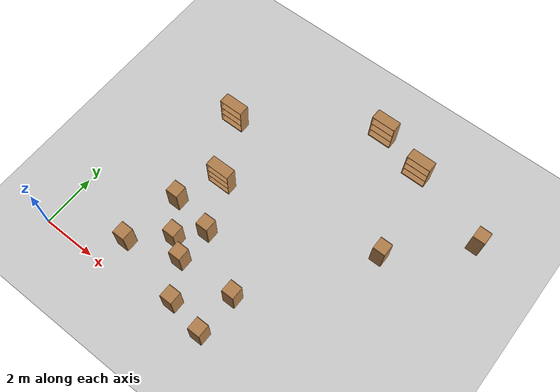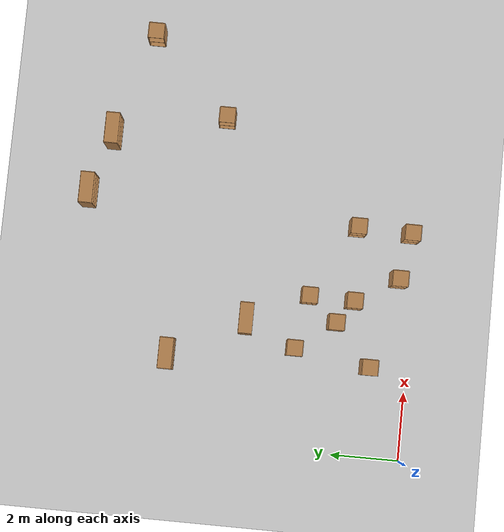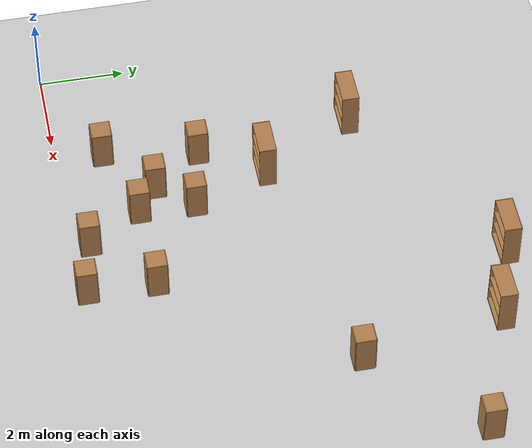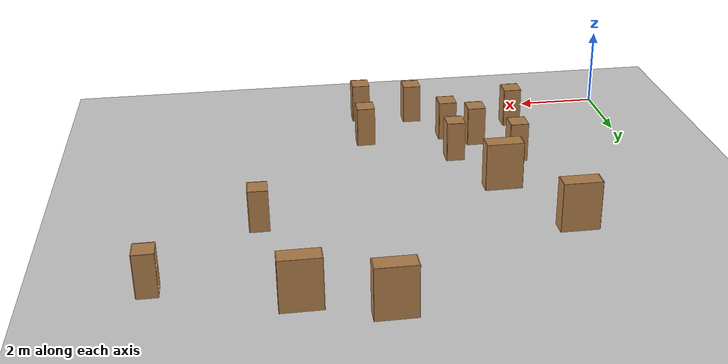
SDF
<sdf version="1.6">
 <world name="default">
  <model name="ground_plane">
   <static>1</static>
   <link name="link">
    <collision name="collision">
     <geometry><plane><normal>0 0 1</normal><size>100 100</size></plane></geometry>
     <surface><friction><ode><mu>100</mu><mu2>50</mu2></ode></friction></surface>
    </collision>
    <visual name="visual">
     <cast_shadows>0</cast_shadows>
     <geometry><plane><normal>0 0 1</normal><size>100 100</size></plane></geometry>
     <material>
      <script><uri>file://media/materials/scripts/gazebo.material</uri><name>Gazebo/Grey</name></script>
     </material>
    </visual>
   </link>
  </model>
  <model name="bookshelf_6">
   <static>1</static>
   <link name="link">
    <inertial><mass>1</mass></inertial>
    <collision name="back">
     <pose>0 0.005 0.6 0 -0 0</pose>
     <geometry><box><size>0.9 0.01 1.2</size></box></geometry>
    </collision>
    <visual name="visual1">
     <pose>0 0.005 0.6 0 -0 0</pose>
     <geometry><box><size>0.9 0.01 1.2</size></box></geometry>
     <material>
      <script><uri>file://media/materials/scripts/gazebo.material</uri><name>Gazebo/Wood</name></script>
     </material>
    </visual>
    <collision name="left_side">
     <pose>0.45 -0.195 0.6 0 -0 0</pose>
     <geometry><box><size>0.02 0.4 1.2</size></box></geometry>
    </collision>
    <visual name="visual2">
     <pose>0.45 -0.195 0.6 0 -0 0</pose>
     <geometry><box><size>0.02 0.4 1.2</size></box></geometry>
     <material>
      <script><uri>file://media/materials/scripts/gazebo.material</uri><name>Gazebo/Wood</name></script>
     </material>
    </visual>
    <collision name="right_side">
     <pose>-0.45 -0.195 0.6 0 -0 0</pose>
     <geometry><box><size>0.02 0.4 1.2</size></box></geometry>
    </collision>
    <visual name="visual3">
     <pose>-0.45 -0.195 0.6 0 -0 0</pose>
     <geometry><box><size>0.02 0.4 1.2</size></box></geometry>
     <material>
      <script><uri>file://media/materials/scripts/gazebo.material</uri><name>Gazebo/Wood</name></script>
     </material>
    </visual>
    <collision name="bottom">
     <pose>0 -0.195 0.03 0 -0 0</pose>
     <geometry><box><size>0.88 0.4 0.06</size></box></geometry>
    </collision>
    <visual name="visual4">
     <pose>0 -0.195 0.03 0 -0 0</pose>
     <geometry><box><size>0.88 0.4 0.06</size></box></geometry>
     <material>
      <script><uri>file://media/materials/scripts/gazebo.material</uri><name>Gazebo/Wood</name></script>
     </material>
    </visual>
    <collision name="top">
     <pose>0 -0.195 1.19 0 -0 0</pose>
     <geometry><box><size>0.88 0.4 0.02</size></box></geometry>
    </collision>
    <visual name="visual5">
     <pose>0 -0.195 1.19 0 -0 0</pose>
     <geometry><box><size>0.88 0.4 0.02</size></box></geometry>
     <material>
      <script><uri>file://media/materials/scripts/gazebo.material</uri><name>Gazebo/Wood</name></script>
     </material>
    </visual>
    <collision name="low_shelf">
     <pose>0 -0.195 0.43 0 -0 0</pose>
     <geometry><box><size>0.88 0.4 0.02</size></box></geometry>
    </collision>
    <visual name="visual6">
     <pose>0 -0.195 0.43 0 -0 0</pose>
     <geometry><box><size>0.88 0.4 0.02</size></box></geometry>
     <material>
      <script><uri>file://media/materials/scripts/gazebo.material</uri><name>Gazebo/Wood</name></script>
     </material>
    </visual>
    <collision name="high_shelf">
     <pose>0 -0.195 0.8 0 -0 0</pose>
     <geometry><box><size>0.88 0.4 0.02</size></box></geometry>
    </collision>
    <visual name="visual7">
     <pose>0 -0.195 0.8 0 -0 0</pose>
     <geometry><box><size>0.88 0.4 0.02</size></box></geometry>
     <material>
      <script><uri>file://media/materials/scripts/gazebo.material</uri><name>Gazebo/Wood</name></script>
     </material>
    </visual>
   </link>
   <pose>2.49876 7.225 0 0 -0 0</pose>
  </model>
  <model name="bookshelf_9">
   <static>1</static>
   <link name="link">
    <inertial><mass>1</mass></inertial>
    <collision name="back">
     <pose>0 0.005 0.6 0 -0 0</pose>
     <geometry><box><size>0.9 0.01 1.2</size></box></geometry>
    </collision>
    <visual name="visual1">
     <pose>0 0.005 0.6 0 -0 0</pose>
     <geometry><box><size>0.9 0.01 1.2</size></box></geometry>
     <material>
      <script><uri>file://media/materials/scripts/gazebo.material</uri><name>Gazebo/Wood</name></script>
     </material>
    </visual>
    <collision name="left_side">
     <pose>0.45 -0.195 0.6 0 -0 0</pose>
     <geometry><box><size>0.02 0.4 1.2</size></box></geometry>
    </collision>
    <visual name="visual2">
     <pose>0.45 -0.195 0.6 0 -0 0</pose>
     <geometry><box><size>0.02 0.4 1.2</size></box></geometry>
     <material>
      <script><uri>file://media/materials/scripts/gazebo.material</uri><name>Gazebo/Wood</name></script>
     </material>
    </visual>
    <collision name="right_side">
     <pose>-0.45 -0.195 0.6 0 -0 0</pose>
     <geometry><box><size>0.02 0.4 1.2</size></box></geometry>
    </collision>
    <visual name="visual3">
     <pose>-0.45 -0.195 0.6 0 -0 0</pose>
     <geometry><box><size>0.02 0.4 1.2</size></box></geometry>
     <material>
      <script><uri>file://media/materials/scripts/gazebo.material</uri><name>Gazebo/Wood</name></script>
     </material>
    </visual>
    <collision name="bottom">
     <pose>0 -0.195 0.03 0 -0 0</pose>
     <geometry><box><size>0.88 0.4 0.06</size></box></geometry>
    </collision>
    <visual name="visual4">
     <pose>0 -0.195 0.03 0 -0 0</pose>
     <geometry><box><size>0.88 0.4 0.06</size></box></geometry>
     <material>
      <script><uri>file://media/materials/scripts/gazebo.material</uri><name>Gazebo/Wood</name></script>
     </material>
    </visual>
    <collision name="top">
     <pose>0 -0.195 1.19 0 -0 0</pose>
     <geometry><box><size>0.88 0.4 0.02</size></box></geometry>
    </collision>
    <visual name="visual5">
     <pose>0 -0.195 1.19 0 -0 0</pose>
     <geometry><box><size>0.88 0.4 0.02</size></box></geometry>
     <material>
      <script><uri>file://media/materials/scripts/gazebo.material</uri><name>Gazebo/Wood</name></script>
     </material>
    </visual>
    <collision name="low_shelf">
     <pose>0 -0.195 0.43 0 -0 0</pose>
     <geometry><box><size>0.88 0.4 0.02</size></box></geometry>
    </collision>
    <visual name="visual6">
     <pose>0 -0.195 0.43 0 -0 0</pose>
     <geometry><box><size>0.88 0.4 0.02</size></box></geometry>
     <material>
      <script><uri>file://media/materials/scripts/gazebo.material</uri><name>Gazebo/Wood</name></script>
     </material>
    </visual>
    <collision name="high_shelf">
     <pose>0 -0.195 0.8 0 -0 0</pose>
     <geometry><box><size>0.88 0.4 0.02</size></box></geometry>
    </collision>
    <visual name="visual7">
     <pose>0 -0.195 0.8 0 -0 0</pose>
     <geometry><box><size>0.88 0.4 0.02</size></box></geometry>
     <material>
      <script><uri>file://media/materials/scripts/gazebo.material</uri><name>Gazebo/Wood</name></script>
     </material>
    </visual>
   </link>
   <pose>7.05604 9.99191 0 0 -0 0</pose>
  </model>
  <model name="bookshelf_10">
   <static>1</static>
   <link name="link">
    <inertial><mass>1</mass></inertial>
    <collision name="back">
     <pose>0 0.005 0.6 0 -0 0</pose>
     <geometry><box><size>0.9 0.01 1.2</size></box></geometry>
    </collision>
    <visual name="visual1">
     <pose>0 0.005 0.6 0 -0 0</pose>
     <geometry><box><size>0.9 0.01 1.2</size></box></geometry>
     <material>
      <script><uri>file://media/materials/scripts/gazebo.material</uri><name>Gazebo/Wood</name></script>
     </material>
    </visual>
    <collision name="left_side">
     <pose>0.45 -0.195 0.6 0 -0 0</pose>
     <geometry><box><size>0.02 0.4 1.2</size></box></geometry>
    </collision>
    <visual name="visual2">
     <pose>0.45 -0.195 0.6 0 -0 0</pose>
     <geometry><box><size>0.02 0.4 1.2</size></box></geometry>
     <material>
      <script><uri>file://media/materials/scripts/gazebo.material</uri><name>Gazebo/Wood</name></script>
     </material>
    </visual>
    <collision name="right_side">
     <pose>-0.45 -0.195 0.6 0 -0 0</pose>
     <geometry><box><size>0.02 0.4 1.2</size></box></geometry>
    </collision>
    <visual name="visual3">
     <pose>-0.45 -0.195 0.6 0 -0 0</pose>
     <geometry><box><size>0.02 0.4 1.2</size></box></geometry>
     <material>
      <script><uri>file://media/materials/scripts/gazebo.material</uri><name>Gazebo/Wood</name></script>
     </material>
    </visual>
    <collision name="bottom">
     <pose>0 -0.195 0.03 0 -0 0</pose>
     <geometry><box><size>0.88 0.4 0.06</size></box></geometry>
    </collision>
    <visual name="visual4">
     <pose>0 -0.195 0.03 0 -0 0</pose>
     <geometry><box><size>0.88 0.4 0.06</size></box></geometry>
     <material>
      <script><uri>file://media/materials/scripts/gazebo.material</uri><name>Gazebo/Wood</name></script>
     </material>
    </visual>
    <collision name="top">
     <pose>0 -0.195 1.19 0 -0 0</pose>
     <geometry><box><size>0.88 0.4 0.02</size></box></geometry>
    </collision>
    <visual name="visual5">
     <pose>0 -0.195 1.19 0 -0 0</pose>
     <geometry><box><size>0.88 0.4 0.02</size></box></geometry>
     <material>
      <script><uri>file://media/materials/scripts/gazebo.material</uri><name>Gazebo/Wood</name></script>
     </material>
    </visual>
    <collision name="low_shelf">
     <pose>0 -0.195 0.43 0 -0 0</pose>
     <geometry><box><size>0.88 0.4 0.02</size></box></geometry>
    </collision>
    <visual name="visual6">
     <pose>0 -0.195 0.43 0 -0 0</pose>
     <geometry><box><size>0.88 0.4 0.02</size></box></geometry>
     <material>
      <script><uri>file://media/materials/scripts/gazebo.material</uri><name>Gazebo/Wood</name></script>
     </material>
    </visual>
    <collision name="high_shelf">
     <pose>0 -0.195 0.8 0 -0 0</pose>
     <geometry><box><size>0.88 0.4 0.02</size></box></geometry>
    </collision>
    <visual name="visual7">
     <pose>0 -0.195 0.8 0 -0 0</pose>
     <geometry><box><size>0.88 0.4 0.02</size></box></geometry>
     <material>
      <script><uri>file://media/materials/scripts/gazebo.material</uri><name>Gazebo/Wood</name></script>
     </material>
    </visual>
   </link>
   <pose>8.86557 9.4373 0 0 -0 0</pose>
  </model>
  <model name="cabinet_1">
   <static>1</static>
   <link name="cabinet_bottom_plate">
    <inertial>
     <pose>0 0 -1 0 -0 0</pose>
     <inertia><ixx>2.05</ixx><ixy>0</ixy><ixz>0</ixz><iyy>2.05</iyy><iyz>0</iyz><izz>2.05</izz></inertia>
     <mass>25</mass>
    </inertial>
    <collision name="cabinet_bottom_plate_geom">
     <pose>0 0 0.01 0 -0 0</pose>
     <geometry><box><size>0.45 0.45 0.02</size></box></geometry>
    </collision>
    <visual name="cabinet_bottom_plate_geom_visual">
     <pose>0 0 0.01 0 -0 0</pose>
     <geometry><box><size>0.45 0.45 0.02</size></box></geometry>
     <material>
      <script><uri>file://media/materials/scripts/gazebo.material</uri><name>Gazebo/Wood</name></script>
     </material>
    </visual>
    <collision name="cabinet_bottom_plate_geom_cabinet_back_plate">
     <pose>0.235 0 0.51 0 -0 0</pose>
     <geometry><box><size>0.02 0.45 1.02</size></box></geometry>
    </collision>
    <visual name="cabinet_bottom_plate_geom_cabinet_back_plate_visual">
     <pose>0.235 0 0.51 0 -0 0</pose>
     <geometry><box><size>0.02 0.45 1.02</size></box></geometry>
     <material>
      <script><uri>file://media/materials/scripts/gazebo.material</uri><name>Gazebo/Wood</name></script>
     </material>
    </visual>
    <collision name="cabinet_bottom_plate_geom_cabinet_left_plate">
     <pose>0 0.235 0.51 0 -0 0</pose>
     <geometry><box><size>0.45 0.02 1.02</size></box></geometry>
    </collision>
    <visual name="cabinet_bottom_plate_geom_cabinet_left_plate_visual">
     <pose>0 0.235 0.51 0 -0 0</pose>
     <geometry><box><size>0.45 0.02 1.02</size></box></geometry>
     <material>
      <script><uri>file://media/materials/scripts/gazebo.material</uri><name>Gazebo/Wood</name></script>
     </material>
    </visual>
    <collision name="cabinet_bottom_plate_geom_cabinet_middle_plate">
     <pose>0 0 0.51 0 -0 0</pose>
     <geometry><box><size>0.45 0.45 0.02</size></box></geometry>
    </collision>
    <visual name="cabinet_bottom_plate_geom_cabinet_middle_plate_visual">
     <pose>0 0 0.51 0 -0 0</pose>
     <geometry><box><size>0.45 0.45 0.02</size></box></geometry>
     <material>
      <script><uri>file://media/materials/scripts/gazebo.material</uri><name>Gazebo/Wood</name></script>
     </material>
    </visual>
    <collision name="cabinet_bottom_plate_geom_cabinet_right_plate">
     <pose>0 -0.235 0.51 0 -0 0</pose>
     <geometry><box><size>0.45 0.02 1.02</size></box></geometry>
    </collision>
    <visual name="cabinet_bottom_plate_geom_cabinet_right_plate_visual">
     <pose>0 -0.235 0.51 0 -0 0</pose>
     <geometry><box><size>0.45 0.02 1.02</size></box></geometry>
     <material>
      <script><uri>file://media/materials/scripts/gazebo.material</uri><name>Gazebo/Wood</name></script>
     </material>
    </visual>
    <collision name="cabinet_bottom_plate_geom_cabinet_top_plate">
     <pose>0 0 1.01 0 -0 0</pose>
     <geometry><box><size>0.45 0.45 0.02</size></box></geometry>
    </collision>
    <visual name="cabinet_bottom_plate_geom_cabinet_top_plate_visual">
     <pose>0 0 1.01 0 -0 0</pose>
     <geometry><box><size>0.45 0.45 0.02</size></box></geometry>
     <material>
      <script><uri>file://media/materials/scripts/gazebo.material</uri><name>Gazebo/Wood</name></script>
     </material>
    </visual>
   </link>
   <pose>11.9001 8.25575 0 0 -0 0</pose>
  </model>
  <model name="cabinet_2">
   <static>1</static>
   <link name="cabinet_bottom_plate">
    <inertial>
     <pose>0 0 -1 0 -0 0</pose>
     <inertia><ixx>2.05</ixx><ixy>0</ixy><ixz>0</ixz><iyy>2.05</iyy><iyz>0</iyz><izz>2.05</izz></inertia>
     <mass>25</mass>
    </inertial>
    <collision name="cabinet_bottom_plate_geom">
     <pose>0 0 0.01 0 -0 0</pose>
     <geometry><box><size>0.45 0.45 0.02</size></box></geometry>
    </collision>
    <visual name="cabinet_bottom_plate_geom_visual">
     <pose>0 0 0.01 0 -0 0</pose>
     <geometry><box><size>0.45 0.45 0.02</size></box></geometry>
     <material>
      <script><uri>file://media/materials/scripts/gazebo.material</uri><name>Gazebo/Wood</name></script>
     </material>
    </visual>
    <collision name="cabinet_bottom_plate_geom_cabinet_back_plate">
     <pose>0.235 0 0.51 0 -0 0</pose>
     <geometry><box><size>0.02 0.45 1.02</size></box></geometry>
    </collision>
    <visual name="cabinet_bottom_plate_geom_cabinet_back_plate_visual">
     <pose>0.235 0 0.51 0 -0 0</pose>
     <geometry><box><size>0.02 0.45 1.02</size></box></geometry>
     <material>
      <script><uri>file://media/materials/scripts/gazebo.material</uri><name>Gazebo/Wood</name></script>
     </material>
    </visual>
    <collision name="cabinet_bottom_plate_geom_cabinet_left_plate">
     <pose>0 0.235 0.51 0 -0 0</pose>
     <geometry><box><size>0.45 0.02 1.02</size></box></geometry>
    </collision>
    <visual name="cabinet_bottom_plate_geom_cabinet_left_plate_visual">
     <pose>0 0.235 0.51 0 -0 0</pose>
     <geometry><box><size>0.45 0.02 1.02</size></box></geometry>
     <material>
      <script><uri>file://media/materials/scripts/gazebo.material</uri><name>Gazebo/Wood</name></script>
     </material>
    </visual>
    <collision name="cabinet_bottom_plate_geom_cabinet_middle_plate">
     <pose>0 0 0.51 0 -0 0</pose>
     <geometry><box><size>0.45 0.45 0.02</size></box></geometry>
    </collision>
    <visual name="cabinet_bottom_plate_geom_cabinet_middle_plate_visual">
     <pose>0 0 0.51 0 -0 0</pose>
     <geometry><box><size>0.45 0.45 0.02</size></box></geometry>
     <material>
      <script><uri>file://media/materials/scripts/gazebo.material</uri><name>Gazebo/Wood</name></script>
     </material>
    </visual>
    <collision name="cabinet_bottom_plate_geom_cabinet_right_plate">
     <pose>0 -0.235 0.51 0 -0 0</pose>
     <geometry><box><size>0.45 0.02 1.02</size></box></geometry>
    </collision>
    <visual name="cabinet_bottom_plate_geom_cabinet_right_plate_visual">
     <pose>0 -0.235 0.51 0 -0 0</pose>
     <geometry><box><size>0.45 0.02 1.02</size></box></geometry>
     <material>
      <script><uri>file://media/materials/scripts/gazebo.material</uri><name>Gazebo/Wood</name></script>
     </material>
    </visual>
    <collision name="cabinet_bottom_plate_geom_cabinet_top_plate">
     <pose>0 0 1.01 0 -0 0</pose>
     <geometry><box><size>0.45 0.45 0.02</size></box></geometry>
    </collision>
    <visual name="cabinet_bottom_plate_geom_cabinet_top_plate_visual">
     <pose>0 0 1.01 0 -0 0</pose>
     <geometry><box><size>0.45 0.45 0.02</size></box></geometry>
     <material>
      <script><uri>file://media/materials/scripts/gazebo.material</uri><name>Gazebo/Wood</name></script>
     </material>
    </visual>
   </link>
   <pose>9.58467 5.92843 0 0 -0 0</pose>
  </model>
  <model name="cabinet_50">
   <static>1</static>
   <link name="cabinet_bottom_plate">
    <inertial>
     <pose>0 0 -1 0 -0 0</pose>
     <inertia><ixx>2.05</ixx><ixy>0</ixy><ixz>0</ixz><iyy>2.05</iyy><iyz>0</iyz><izz>2.05</izz></inertia>
     <mass>25</mass>
    </inertial>
    <collision name="cabinet_bottom_plate_geom">
     <pose>0 0 0.01 0 -0 0</pose>
     <geometry><box><size>0.45 0.45 0.02</size></box></geometry>
    </collision>
    <visual name="cabinet_bottom_plate_geom_visual">
     <pose>0 0 0.01 0 -0 0</pose>
     <geometry><box><size>0.45 0.45 0.02</size></box></geometry>
     <material>
      <script><uri>file://media/materials/scripts/gazebo.material</uri><name>Gazebo/Wood</name></script>
     </material>
    </visual>
    <collision name="cabinet_bottom_plate_geom_cabinet_back_plate">
     <pose>0.235 0 0.51 0 -0 0</pose>
     <geometry><box><size>0.02 0.45 1.02</size></box></geometry>
    </collision>
    <visual name="cabinet_bottom_plate_geom_cabinet_back_plate_visual">
     <pose>0.235 0 0.51 0 -0 0</pose>
     <geometry><box><size>0.02 0.45 1.02</size></box></geometry>
     <material>
      <script><uri>file://media/materials/scripts/gazebo.material</uri><name>Gazebo/Wood</name></script>
     </material>
    </visual>
    <collision name="cabinet_bottom_plate_geom_cabinet_left_plate">
     <pose>0 0.235 0.51 0 -0 0</pose>
     <geometry><box><size>0.45 0.02 1.02</size></box></geometry>
    </collision>
    <visual name="cabinet_bottom_plate_geom_cabinet_left_plate_visual">
     <pose>0 0.235 0.51 0 -0 0</pose>
     <geometry><box><size>0.45 0.02 1.02</size></box></geometry>
     <material>
      <script><uri>file://media/materials/scripts/gazebo.material</uri><name>Gazebo/Wood</name></script>
     </material>
    </visual>
    <collision name="cabinet_bottom_plate_geom_cabinet_middle_plate">
     <pose>0 0 0.51 0 -0 0</pose>
     <geometry><box><size>0.45 0.45 0.02</size></box></geometry>
    </collision>
    <visual name="cabinet_bottom_plate_geom_cabinet_middle_plate_visual">
     <pose>0 0 0.51 0 -0 0</pose>
     <geometry><box><size>0.45 0.45 0.02</size></box></geometry>
     <material>
      <script><uri>file://media/materials/scripts/gazebo.material</uri><name>Gazebo/Wood</name></script>
     </material>
    </visual>
    <collision name="cabinet_bottom_plate_geom_cabinet_right_plate">
     <pose>0 -0.235 0.51 0 -0 0</pose>
     <geometry><box><size>0.45 0.02 1.02</size></box></geometry>
    </collision>
    <visual name="cabinet_bottom_plate_geom_cabinet_right_plate_visual">
     <pose>0 -0.235 0.51 0 -0 0</pose>
     <geometry><box><size>0.45 0.02 1.02</size></box></geometry>
     <material>
      <script><uri>file://media/materials/scripts/gazebo.material</uri><name>Gazebo/Wood</name></script>
     </material>
    </visual>
    <collision name="cabinet_bottom_plate_geom_cabinet_top_plate">
     <pose>0 0 1.01 0 -0 0</pose>
     <geometry><box><size>0.45 0.45 0.02</size></box></geometry>
    </collision>
    <visual name="cabinet_bottom_plate_geom_cabinet_top_plate_visual">
     <pose>0 0 1.01 0 -0 0</pose>
     <geometry><box><size>0.45 0.45 0.02</size></box></geometry>
     <material>
      <script><uri>file://media/materials/scripts/gazebo.material</uri><name>Gazebo/Wood</name></script>
     </material>
    </visual>
   </link>
   <pose>2.63558 1.13269 0 0 -0 0</pose>
  </model>
  <model name="cabinet_51">
   <static>1</static>
   <link name="cabinet_bottom_plate">
    <inertial>
     <pose>0 0 -1 0 -0 0</pose>
     <inertia><ixx>2.05</ixx><ixy>0</ixy><ixz>0</ixz><iyy>2.05</iyy><iyz>0</iyz><izz>2.05</izz></inertia>
     <mass>25</mass>
    </inertial>
    <collision name="cabinet_bottom_plate_geom">
     <pose>0 0 0.01 0 -0 0</pose>
     <geometry><box><size>0.45 0.45 0.02</size></box></geometry>
    </collision>
    <visual name="cabinet_bottom_plate_geom_visual">
     <pose>0 0 0.01 0 -0 0</pose>
     <geometry><box><size>0.45 0.45 0.02</size></box></geometry>
     <material>
      <script><uri>file://media/materials/scripts/gazebo.material</uri><name>Gazebo/Wood</name></script>
     </material>
    </visual>
    <collision name="cabinet_bottom_plate_geom_cabinet_back_plate">
     <pose>0.235 0 0.51 0 -0 0</pose>
     <geometry><box><size>0.02 0.45 1.02</size></box></geometry>
    </collision>
    <visual name="cabinet_bottom_plate_geom_cabinet_back_plate_visual">
     <pose>0.235 0 0.51 0 -0 0</pose>
     <geometry><box><size>0.02 0.45 1.02</size></box></geometry>
     <material>
      <script><uri>file://media/materials/scripts/gazebo.material</uri><name>Gazebo/Wood</name></script>
     </material>
    </visual>
    <collision name="cabinet_bottom_plate_geom_cabinet_left_plate">
     <pose>0 0.235 0.51 0 -0 0</pose>
     <geometry><box><size>0.45 0.02 1.02</size></box></geometry>
    </collision>
    <visual name="cabinet_bottom_plate_geom_cabinet_left_plate_visual">
     <pose>0 0.235 0.51 0 -0 0</pose>
     <geometry><box><size>0.45 0.02 1.02</size></box></geometry>
     <material>
      <script><uri>file://media/materials/scripts/gazebo.material</uri><name>Gazebo/Wood</name></script>
     </material>
    </visual>
    <collision name="cabinet_bottom_plate_geom_cabinet_middle_plate">
     <pose>0 0 0.51 0 -0 0</pose>
     <geometry><box><size>0.45 0.45 0.02</size></box></geometry>
    </collision>
    <visual name="cabinet_bottom_plate_geom_cabinet_middle_plate_visual">
     <pose>0 0 0.51 0 -0 0</pose>
     <geometry><box><size>0.45 0.45 0.02</size></box></geometry>
     <material>
      <script><uri>file://media/materials/scripts/gazebo.material</uri><name>Gazebo/Wood</name></script>
     </material>
    </visual>
    <collision name="cabinet_bottom_plate_geom_cabinet_right_plate">
     <pose>0 -0.235 0.51 0 -0 0</pose>
     <geometry><box><size>0.45 0.02 1.02</size></box></geometry>
    </collision>
    <visual name="cabinet_bottom_plate_geom_cabinet_right_plate_visual">
     <pose>0 -0.235 0.51 0 -0 0</pose>
     <geometry><box><size>0.45 0.02 1.02</size></box></geometry>
     <material>
      <script><uri>file://media/materials/scripts/gazebo.material</uri><name>Gazebo/Wood</name></script>
     </material>
    </visual>
    <collision name="cabinet_bottom_plate_geom_cabinet_top_plate">
     <pose>0 0 1.01 0 -0 0</pose>
     <geometry><box><size>0.45 0.45 0.02</size></box></geometry>
    </collision>
    <visual name="cabinet_bottom_plate_geom_cabinet_top_plate_visual">
     <pose>0 0 1.01 0 -0 0</pose>
     <geometry><box><size>0.45 0.45 0.02</size></box></geometry>
     <material>
      <script><uri>file://media/materials/scripts/gazebo.material</uri><name>Gazebo/Wood</name></script>
     </material>
    </visual>
   </link>
   <pose>3.84955 2.19991 0 0 -0 0</pose>
  </model>
  <model name="cabinet_52">
   <static>1</static>
   <link name="cabinet_bottom_plate">
    <inertial>
     <pose>0 0 -1 0 -0 0</pose>
     <inertia><ixx>2.05</ixx><ixy>0</ixy><ixz>0</ixz><iyy>2.05</iyy><iyz>0</iyz><izz>2.05</izz></inertia>
     <mass>25</mass>
    </inertial>
    <collision name="cabinet_bottom_plate_geom">
     <pose>0 0 0.01 0 -0 0</pose>
     <geometry><box><size>0.45 0.45 0.02</size></box></geometry>
    </collision>
    <visual name="cabinet_bottom_plate_geom_visual">
     <pose>0 0 0.01 0 -0 0</pose>
     <geometry><box><size>0.45 0.45 0.02</size></box></geometry>
     <material>
      <script><uri>file://media/materials/scripts/gazebo.material</uri><name>Gazebo/Wood</name></script>
     </material>
    </visual>
    <collision name="cabinet_bottom_plate_geom_cabinet_back_plate">
     <pose>0.235 0 0.51 0 -0 0</pose>
     <geometry><box><size>0.02 0.45 1.02</size></box></geometry>
    </collision>
    <visual name="cabinet_bottom_plate_geom_cabinet_back_plate_visual">
     <pose>0.235 0 0.51 0 -0 0</pose>
     <geometry><box><size>0.02 0.45 1.02</size></box></geometry>
     <material>
      <script><uri>file://media/materials/scripts/gazebo.material</uri><name>Gazebo/Wood</name></script>
     </material>
    </visual>
    <collision name="cabinet_bottom_plate_geom_cabinet_left_plate">
     <pose>0 0.235 0.51 0 -0 0</pose>
     <geometry><box><size>0.45 0.02 1.02</size></box></geometry>
    </collision>
    <visual name="cabinet_bottom_plate_geom_cabinet_left_plate_visual">
     <pose>0 0.235 0.51 0 -0 0</pose>
     <geometry><box><size>0.45 0.02 1.02</size></box></geometry>
     <material>
      <script><uri>file://media/materials/scripts/gazebo.material</uri><name>Gazebo/Wood</name></script>
     </material>
    </visual>
    <collision name="cabinet_bottom_plate_geom_cabinet_middle_plate">
     <pose>0 0 0.51 0 -0 0</pose>
     <geometry><box><size>0.45 0.45 0.02</size></box></geometry>
    </collision>
    <visual name="cabinet_bottom_plate_geom_cabinet_middle_plate_visual">
     <pose>0 0 0.51 0 -0 0</pose>
     <geometry><box><size>0.45 0.45 0.02</size></box></geometry>
     <material>
      <script><uri>file://media/materials/scripts/gazebo.material</uri><name>Gazebo/Wood</name></script>
     </material>
    </visual>
    <collision name="cabinet_bottom_plate_geom_cabinet_right_plate">
     <pose>0 -0.235 0.51 0 -0 0</pose>
     <geometry><box><size>0.45 0.02 1.02</size></box></geometry>
    </collision>
    <visual name="cabinet_bottom_plate_geom_cabinet_right_plate_visual">
     <pose>0 -0.235 0.51 0 -0 0</pose>
     <geometry><box><size>0.45 0.02 1.02</size></box></geometry>
     <material>
      <script><uri>file://media/materials/scripts/gazebo.material</uri><name>Gazebo/Wood</name></script>
     </material>
    </visual>
    <collision name="cabinet_bottom_plate_geom_cabinet_top_plate">
     <pose>0 0 1.01 0 -0 0</pose>
     <geometry><box><size>0.45 0.45 0.02</size></box></geometry>
    </collision>
    <visual name="cabinet_bottom_plate_geom_cabinet_top_plate_visual">
     <pose>0 0 1.01 0 -0 0</pose>
     <geometry><box><size>0.45 0.45 0.02</size></box></geometry>
     <material>
      <script><uri>file://media/materials/scripts/gazebo.material</uri><name>Gazebo/Wood</name></script>
     </material>
    </visual>
   </link>
   <pose>2.9952 3.34253 0 0 -0 0</pose>
  </model>
  <model name="bookshelf_38">
   <static>1</static>
   <link name="link">
    <inertial><mass>1</mass></inertial>
    <collision name="back">
     <pose>0 0.005 0.6 0 -0 0</pose>
     <geometry><box><size>0.9 0.01 1.2</size></box></geometry>
    </collision>
    <visual name="visual1">
     <pose>0 0.005 0.6 0 -0 0</pose>
     <geometry><box><size>0.9 0.01 1.2</size></box></geometry>
     <material>
      <script><uri>file://media/materials/scripts/gazebo.material</uri><name>Gazebo/Wood</name></script>
     </material>
    </visual>
    <collision name="left_side">
     <pose>0.45 -0.195 0.6 0 -0 0</pose>
     <geometry><box><size>0.02 0.4 1.2</size></box></geometry>
    </collision>
    <visual name="visual2">
     <pose>0.45 -0.195 0.6 0 -0 0</pose>
     <geometry><box><size>0.02 0.4 1.2</size></box></geometry>
     <material>
      <script><uri>file://media/materials/scripts/gazebo.material</uri><name>Gazebo/Wood</name></script>
     </material>
    </visual>
    <collision name="right_side">
     <pose>-0.45 -0.195 0.6 0 -0 0</pose>
     <geometry><box><size>0.02 0.4 1.2</size></box></geometry>
    </collision>
    <visual name="visual3">
     <pose>-0.45 -0.195 0.6 0 -0 0</pose>
     <geometry><box><size>0.02 0.4 1.2</size></box></geometry>
     <material>
      <script><uri>file://media/materials/scripts/gazebo.material</uri><name>Gazebo/Wood</name></script>
     </material>
    </visual>
    <collision name="bottom">
     <pose>0 -0.195 0.03 0 -0 0</pose>
     <geometry><box><size>0.88 0.4 0.06</size></box></geometry>
    </collision>
    <visual name="visual4">
     <pose>0 -0.195 0.03 0 -0 0</pose>
     <geometry><box><size>0.88 0.4 0.06</size></box></geometry>
     <material>
      <script><uri>file://media/materials/scripts/gazebo.material</uri><name>Gazebo/Wood</name></script>
     </material>
    </visual>
    <collision name="top">
     <pose>0 -0.195 1.19 0 -0 0</pose>
     <geometry><box><size>0.88 0.4 0.02</size></box></geometry>
    </collision>
    <visual name="visual5">
     <pose>0 -0.195 1.19 0 -0 0</pose>
     <geometry><box><size>0.88 0.4 0.02</size></box></geometry>
     <material>
      <script><uri>file://media/materials/scripts/gazebo.material</uri><name>Gazebo/Wood</name></script>
     </material>
    </visual>
    <collision name="low_shelf">
     <pose>0 -0.195 0.43 0 -0 0</pose>
     <geometry><box><size>0.88 0.4 0.02</size></box></geometry>
    </collision>
    <visual name="visual6">
     <pose>0 -0.195 0.43 0 -0 0</pose>
     <geometry><box><size>0.88 0.4 0.02</size></box></geometry>
     <material>
      <script><uri>file://media/materials/scripts/gazebo.material</uri><name>Gazebo/Wood</name></script>
     </material>
    </visual>
    <collision name="high_shelf">
     <pose>0 -0.195 0.8 0 -0 0</pose>
     <geometry><box><size>0.88 0.4 0.02</size></box></geometry>
    </collision>
    <visual name="visual7">
     <pose>0 -0.195 0.8 0 -0 0</pose>
     <geometry><box><size>0.88 0.4 0.02</size></box></geometry>
     <material>
      <script><uri>file://media/materials/scripts/gazebo.material</uri><name>Gazebo/Wood</name></script>
     </material>
    </visual>
   </link>
   <pose>3.72064 5.01569 0 0 -0 0</pose>
  </model>
  <model name="cabinet_57">
   <static>1</static>
   <link name="cabinet_bottom_plate">
    <inertial>
     <pose>0 0 -1 0 -0 0</pose>
     <inertia><ixx>2.05</ixx><ixy>0</ixy><ixz>0</ixz><iyy>2.05</iyy><iyz>0</iyz><izz>2.05</izz></inertia>
     <mass>25</mass>
    </inertial>
    <collision name="cabinet_bottom_plate_geom">
     <pose>0 0 0.01 0 -0 0</pose>
     <geometry><box><size>0.45 0.45 0.02</size></box></geometry>
    </collision>
    <visual name="cabinet_bottom_plate_geom_visual">
     <pose>0 0 0.01 0 -0 0</pose>
     <geometry><box><size>0.45 0.45 0.02</size></box></geometry>
     <material>
      <script><uri>file://media/materials/scripts/gazebo.material</uri><name>Gazebo/Wood</name></script>
     </material>
    </visual>
    <collision name="cabinet_bottom_plate_geom_cabinet_back_plate">
     <pose>0.235 0 0.51 0 -0 0</pose>
     <geometry><box><size>0.02 0.45 1.02</size></box></geometry>
    </collision>
    <visual name="cabinet_bottom_plate_geom_cabinet_back_plate_visual">
     <pose>0.235 0 0.51 0 -0 0</pose>
     <geometry><box><size>0.02 0.45 1.02</size></box></geometry>
     <material>
      <script><uri>file://media/materials/scripts/gazebo.material</uri><name>Gazebo/Wood</name></script>
     </material>
    </visual>
    <collision name="cabinet_bottom_plate_geom_cabinet_left_plate">
     <pose>0 0.235 0.51 0 -0 0</pose>
     <geometry><box><size>0.45 0.02 1.02</size></box></geometry>
    </collision>
    <visual name="cabinet_bottom_plate_geom_cabinet_left_plate_visual">
     <pose>0 0.235 0.51 0 -0 0</pose>
     <geometry><box><size>0.45 0.02 1.02</size></box></geometry>
     <material>
      <script><uri>file://media/materials/scripts/gazebo.material</uri><name>Gazebo/Wood</name></script>
     </material>
    </visual>
    <collision name="cabinet_bottom_plate_geom_cabinet_middle_plate">
     <pose>0 0 0.51 0 -0 0</pose>
     <geometry><box><size>0.45 0.45 0.02</size></box></geometry>
    </collision>
    <visual name="cabinet_bottom_plate_geom_cabinet_middle_plate_visual">
     <pose>0 0 0.51 0 -0 0</pose>
     <geometry><box><size>0.45 0.45 0.02</size></box></geometry>
     <material>
      <script><uri>file://media/materials/scripts/gazebo.material</uri><name>Gazebo/Wood</name></script>
     </material>
    </visual>
    <collision name="cabinet_bottom_plate_geom_cabinet_right_plate">
     <pose>0 -0.235 0.51 0 -0 0</pose>
     <geometry><box><size>0.45 0.02 1.02</size></box></geometry>
    </collision>
    <visual name="cabinet_bottom_plate_geom_cabinet_right_plate_visual">
     <pose>0 -0.235 0.51 0 -0 0</pose>
     <geometry><box><size>0.45 0.02 1.02</size></box></geometry>
     <material>
      <script><uri>file://media/materials/scripts/gazebo.material</uri><name>Gazebo/Wood</name></script>
     </material>
    </visual>
    <collision name="cabinet_bottom_plate_geom_cabinet_top_plate">
     <pose>0 0 1.01 0 -0 0</pose>
     <geometry><box><size>0.45 0.45 0.02</size></box></geometry>
    </collision>
    <visual name="cabinet_bottom_plate_geom_cabinet_top_plate_visual">
     <pose>0 0 1.01 0 -0 0</pose>
     <geometry><box><size>0.45 0.45 0.02</size></box></geometry>
     <material>
      <script><uri>file://media/materials/scripts/gazebo.material</uri><name>Gazebo/Wood</name></script>
     </material>
    </visual>
   </link>
   <pose>5.27946 0.471398 0 0 -0 0</pose>
  </model>
  <model name="cabinet_58">
   <static>1</static>
   <link name="cabinet_bottom_plate">
    <inertial>
     <pose>0 0 -1 0 -0 0</pose>
     <inertia><ixx>2.05</ixx><ixy>0</ixy><ixz>0</ixz><iyy>2.05</iyy><iyz>0</iyz><izz>2.05</izz></inertia>
     <mass>25</mass>
    </inertial>
    <collision name="cabinet_bottom_plate_geom">
     <pose>0 0 0.01 0 -0 0</pose>
     <geometry><box><size>0.45 0.45 0.02</size></box></geometry>
    </collision>
    <visual name="cabinet_bottom_plate_geom_visual">
     <pose>0 0 0.01 0 -0 0</pose>
     <geometry><box><size>0.45 0.45 0.02</size></box></geometry>
     <material>
      <script><uri>file://media/materials/scripts/gazebo.material</uri><name>Gazebo/Wood</name></script>
     </material>
    </visual>
    <collision name="cabinet_bottom_plate_geom_cabinet_back_plate">
     <pose>0.235 0 0.51 0 -0 0</pose>
     <geometry><box><size>0.02 0.45 1.02</size></box></geometry>
    </collision>
    <visual name="cabinet_bottom_plate_geom_cabinet_back_plate_visual">
     <pose>0.235 0 0.51 0 -0 0</pose>
     <geometry><box><size>0.02 0.45 1.02</size></box></geometry>
     <material>
      <script><uri>file://media/materials/scripts/gazebo.material</uri><name>Gazebo/Wood</name></script>
     </material>
    </visual>
    <collision name="cabinet_bottom_plate_geom_cabinet_left_plate">
     <pose>0 0.235 0.51 0 -0 0</pose>
     <geometry><box><size>0.45 0.02 1.02</size></box></geometry>
    </collision>
    <visual name="cabinet_bottom_plate_geom_cabinet_left_plate_visual">
     <pose>0 0.235 0.51 0 -0 0</pose>
     <geometry><box><size>0.45 0.02 1.02</size></box></geometry>
     <material>
      <script><uri>file://media/materials/scripts/gazebo.material</uri><name>Gazebo/Wood</name></script>
     </material>
    </visual>
    <collision name="cabinet_bottom_plate_geom_cabinet_middle_plate">
     <pose>0 0 0.51 0 -0 0</pose>
     <geometry><box><size>0.45 0.45 0.02</size></box></geometry>
    </collision>
    <visual name="cabinet_bottom_plate_geom_cabinet_middle_plate_visual">
     <pose>0 0 0.51 0 -0 0</pose>
     <geometry><box><size>0.45 0.45 0.02</size></box></geometry>
     <material>
      <script><uri>file://media/materials/scripts/gazebo.material</uri><name>Gazebo/Wood</name></script>
     </material>
    </visual>
    <collision name="cabinet_bottom_plate_geom_cabinet_right_plate">
     <pose>0 -0.235 0.51 0 -0 0</pose>
     <geometry><box><size>0.45 0.02 1.02</size></box></geometry>
    </collision>
    <visual name="cabinet_bottom_plate_geom_cabinet_right_plate_visual">
     <pose>0 -0.235 0.51 0 -0 0</pose>
     <geometry><box><size>0.45 0.02 1.02</size></box></geometry>
     <material>
      <script><uri>file://media/materials/scripts/gazebo.material</uri><name>Gazebo/Wood</name></script>
     </material>
    </visual>
    <collision name="cabinet_bottom_plate_geom_cabinet_top_plate">
     <pose>0 0 1.01 0 -0 0</pose>
     <geometry><box><size>0.45 0.45 0.02</size></box></geometry>
    </collision>
    <visual name="cabinet_bottom_plate_geom_cabinet_top_plate_visual">
     <pose>0 0 1.01 0 -0 0</pose>
     <geometry><box><size>0.45 0.45 0.02</size></box></geometry>
     <material>
      <script><uri>file://media/materials/scripts/gazebo.material</uri><name>Gazebo/Wood</name></script>
     </material>
    </visual>
   </link>
   <pose>4.52318 1.72919 0 0 -0 0</pose>
  </model>
  <model name="cabinet_59">
   <static>1</static>
   <link name="cabinet_bottom_plate">
    <inertial>
     <pose>0 0 -1 0 -0 0</pose>
     <inertia><ixx>2.05</ixx><ixy>0</ixy><ixz>0</ixz><iyy>2.05</iyy><iyz>0</iyz><izz>2.05</izz></inertia>
     <mass>25</mass>
    </inertial>
    <collision name="cabinet_bottom_plate_geom">
     <pose>0 0 0.01 0 -0 0</pose>
     <geometry><box><size>0.45 0.45 0.02</size></box></geometry>
    </collision>
    <visual name="cabinet_bottom_plate_geom_visual">
     <pose>0 0 0.01 0 -0 0</pose>
     <geometry><box><size>0.45 0.45 0.02</size></box></geometry>
     <material>
      <script><uri>file://media/materials/scripts/gazebo.material</uri><name>Gazebo/Wood</name></script>
     </material>
    </visual>
    <collision name="cabinet_bottom_plate_geom_cabinet_back_plate">
     <pose>0.235 0 0.51 0 -0 0</pose>
     <geometry><box><size>0.02 0.45 1.02</size></box></geometry>
    </collision>
    <visual name="cabinet_bottom_plate_geom_cabinet_back_plate_visual">
     <pose>0.235 0 0.51 0 -0 0</pose>
     <geometry><box><size>0.02 0.45 1.02</size></box></geometry>
     <material>
      <script><uri>file://media/materials/scripts/gazebo.material</uri><name>Gazebo/Wood</name></script>
     </material>
    </visual>
    <collision name="cabinet_bottom_plate_geom_cabinet_left_plate">
     <pose>0 0.235 0.51 0 -0 0</pose>
     <geometry><box><size>0.45 0.02 1.02</size></box></geometry>
    </collision>
    <visual name="cabinet_bottom_plate_geom_cabinet_left_plate_visual">
     <pose>0 0.235 0.51 0 -0 0</pose>
     <geometry><box><size>0.45 0.02 1.02</size></box></geometry>
     <material>
      <script><uri>file://media/materials/scripts/gazebo.material</uri><name>Gazebo/Wood</name></script>
     </material>
    </visual>
    <collision name="cabinet_bottom_plate_geom_cabinet_middle_plate">
     <pose>0 0 0.51 0 -0 0</pose>
     <geometry><box><size>0.45 0.45 0.02</size></box></geometry>
    </collision>
    <visual name="cabinet_bottom_plate_geom_cabinet_middle_plate_visual">
     <pose>0 0 0.51 0 -0 0</pose>
     <geometry><box><size>0.45 0.45 0.02</size></box></geometry>
     <material>
      <script><uri>file://media/materials/scripts/gazebo.material</uri><name>Gazebo/Wood</name></script>
     </material>
    </visual>
    <collision name="cabinet_bottom_plate_geom_cabinet_right_plate">
     <pose>0 -0.235 0.51 0 -0 0</pose>
     <geometry><box><size>0.45 0.02 1.02</size></box></geometry>
    </collision>
    <visual name="cabinet_bottom_plate_geom_cabinet_right_plate_visual">
     <pose>0 -0.235 0.51 0 -0 0</pose>
     <geometry><box><size>0.45 0.02 1.02</size></box></geometry>
     <material>
      <script><uri>file://media/materials/scripts/gazebo.material</uri><name>Gazebo/Wood</name></script>
     </material>
    </visual>
    <collision name="cabinet_bottom_plate_geom_cabinet_top_plate">
     <pose>0 0 1.01 0 -0 0</pose>
     <geometry><box><size>0.45 0.45 0.02</size></box></geometry>
    </collision>
    <visual name="cabinet_bottom_plate_geom_cabinet_top_plate_visual">
     <pose>0 0 1.01 0 -0 0</pose>
     <geometry><box><size>0.45 0.45 0.02</size></box></geometry>
     <material>
      <script><uri>file://media/materials/scripts/gazebo.material</uri><name>Gazebo/Wood</name></script>
     </material>
    </visual>
   </link>
   <pose>4.55742 3.04291 0 0 -0 0</pose>
  </model>
  <model name="cabinet_64">
   <static>1</static>
   <link name="cabinet_bottom_plate">
    <inertial>
     <pose>0 0 -1 0 -0 0</pose>
     <inertia><ixx>2.05</ixx><ixy>0</ixy><ixz>0</ixz><iyy>2.05</iyy><iyz>0</iyz><izz>2.05</izz></inertia>
     <mass>25</mass>
    </inertial>
    <collision name="cabinet_bottom_plate_geom">
     <pose>0 0 0.01 0 -0 0</pose>
     <geometry><box><size>0.45 0.45 0.02</size></box></geometry>
    </collision>
    <visual name="cabinet_bottom_plate_geom_visual">
     <pose>0 0 0.01 0 -0 0</pose>
     <geometry><box><size>0.45 0.45 0.02</size></box></geometry>
     <material>
      <script><uri>file://media/materials/scripts/gazebo.material</uri><name>Gazebo/Wood</name></script>
     </material>
    </visual>
    <collision name="cabinet_bottom_plate_geom_cabinet_back_plate">
     <pose>0.235 0 0.51 0 -0 0</pose>
     <geometry><box><size>0.02 0.45 1.02</size></box></geometry>
    </collision>
    <visual name="cabinet_bottom_plate_geom_cabinet_back_plate_visual">
     <pose>0.235 0 0.51 0 -0 0</pose>
     <geometry><box><size>0.02 0.45 1.02</size></box></geometry>
     <material>
      <script><uri>file://media/materials/scripts/gazebo.material</uri><name>Gazebo/Wood</name></script>
     </material>
    </visual>
    <collision name="cabinet_bottom_plate_geom_cabinet_left_plate">
     <pose>0 0.235 0.51 0 -0 0</pose>
     <geometry><box><size>0.45 0.02 1.02</size></box></geometry>
    </collision>
    <visual name="cabinet_bottom_plate_geom_cabinet_left_plate_visual">
     <pose>0 0.235 0.51 0 -0 0</pose>
     <geometry><box><size>0.45 0.02 1.02</size></box></geometry>
     <material>
      <script><uri>file://media/materials/scripts/gazebo.material</uri><name>Gazebo/Wood</name></script>
     </material>
    </visual>
    <collision name="cabinet_bottom_plate_geom_cabinet_middle_plate">
     <pose>0 0 0.51 0 -0 0</pose>
     <geometry><box><size>0.45 0.45 0.02</size></box></geometry>
    </collision>
    <visual name="cabinet_bottom_plate_geom_cabinet_middle_plate_visual">
     <pose>0 0 0.51 0 -0 0</pose>
     <geometry><box><size>0.45 0.45 0.02</size></box></geometry>
     <material>
      <script><uri>file://media/materials/scripts/gazebo.material</uri><name>Gazebo/Wood</name></script>
     </material>
    </visual>
    <collision name="cabinet_bottom_plate_geom_cabinet_right_plate">
     <pose>0 -0.235 0.51 0 -0 0</pose>
     <geometry><box><size>0.45 0.02 1.02</size></box></geometry>
    </collision>
    <visual name="cabinet_bottom_plate_geom_cabinet_right_plate_visual">
     <pose>0 -0.235 0.51 0 -0 0</pose>
     <geometry><box><size>0.45 0.02 1.02</size></box></geometry>
     <material>
      <script><uri>file://media/materials/scripts/gazebo.material</uri><name>Gazebo/Wood</name></script>
     </material>
    </visual>
    <collision name="cabinet_bottom_plate_geom_cabinet_top_plate">
     <pose>0 0 1.01 0 -0 0</pose>
     <geometry><box><size>0.45 0.45 0.02</size></box></geometry>
    </collision>
    <visual name="cabinet_bottom_plate_geom_cabinet_top_plate_visual">
     <pose>0 0 1.01 0 -0 0</pose>
     <geometry><box><size>0.45 0.45 0.02</size></box></geometry>
     <material>
      <script><uri>file://media/materials/scripts/gazebo.material</uri><name>Gazebo/Wood</name></script>
     </material>
    </visual>
   </link>
   <pose>6.64244 0.219451 0 0 -0 0</pose>
  </model>
  <model name="cabinet_65">
   <static>1</static>
   <link name="cabinet_bottom_plate">
    <inertial>
     <pose>0 0 -1 0 -0 0</pose>
     <inertia><ixx>2.05</ixx><ixy>0</ixy><ixz>0</ixz><iyy>2.05</iyy><iyz>0</iyz><izz>2.05</izz></inertia>
     <mass>25</mass>
    </inertial>
    <collision name="cabinet_bottom_plate_geom">
     <pose>0 0 0.01 0 -0 0</pose>
     <geometry><box><size>0.45 0.45 0.02</size></box></geometry>
    </collision>
    <visual name="cabinet_bottom_plate_geom_visual">
     <pose>0 0 0.01 0 -0 0</pose>
     <geometry><box><size>0.45 0.45 0.02</size></box></geometry>
     <material>
      <script><uri>file://media/materials/scripts/gazebo.material</uri><name>Gazebo/Wood</name></script>
     </material>
    </visual>
    <collision name="cabinet_bottom_plate_geom_cabinet_back_plate">
     <pose>0.235 0 0.51 0 -0 0</pose>
     <geometry><box><size>0.02 0.45 1.02</size></box></geometry>
    </collision>
    <visual name="cabinet_bottom_plate_geom_cabinet_back_plate_visual">
     <pose>0.235 0 0.51 0 -0 0</pose>
     <geometry><box><size>0.02 0.45 1.02</size></box></geometry>
     <material>
      <script><uri>file://media/materials/scripts/gazebo.material</uri><name>Gazebo/Wood</name></script>
     </material>
    </visual>
    <collision name="cabinet_bottom_plate_geom_cabinet_left_plate">
     <pose>0 0.235 0.51 0 -0 0</pose>
     <geometry><box><size>0.45 0.02 1.02</size></box></geometry>
    </collision>
    <visual name="cabinet_bottom_plate_geom_cabinet_left_plate_visual">
     <pose>0 0.235 0.51 0 -0 0</pose>
     <geometry><box><size>0.45 0.02 1.02</size></box></geometry>
     <material>
      <script><uri>file://media/materials/scripts/gazebo.material</uri><name>Gazebo/Wood</name></script>
     </material>
    </visual>
    <collision name="cabinet_bottom_plate_geom_cabinet_middle_plate">
     <pose>0 0 0.51 0 -0 0</pose>
     <geometry><box><size>0.45 0.45 0.02</size></box></geometry>
    </collision>
    <visual name="cabinet_bottom_plate_geom_cabinet_middle_plate_visual">
     <pose>0 0 0.51 0 -0 0</pose>
     <geometry><box><size>0.45 0.45 0.02</size></box></geometry>
     <material>
      <script><uri>file://media/materials/scripts/gazebo.material</uri><name>Gazebo/Wood</name></script>
     </material>
    </visual>
    <collision name="cabinet_bottom_plate_geom_cabinet_right_plate">
     <pose>0 -0.235 0.51 0 -0 0</pose>
     <geometry><box><size>0.45 0.02 1.02</size></box></geometry>
    </collision>
    <visual name="cabinet_bottom_plate_geom_cabinet_right_plate_visual">
     <pose>0 -0.235 0.51 0 -0 0</pose>
     <geometry><box><size>0.45 0.02 1.02</size></box></geometry>
     <material>
      <script><uri>file://media/materials/scripts/gazebo.material</uri><name>Gazebo/Wood</name></script>
     </material>
    </visual>
    <collision name="cabinet_bottom_plate_geom_cabinet_top_plate">
     <pose>0 0 1.01 0 -0 0</pose>
     <geometry><box><size>0.45 0.45 0.02</size></box></geometry>
    </collision>
    <visual name="cabinet_bottom_plate_geom_cabinet_top_plate_visual">
     <pose>0 0 1.01 0 -0 0</pose>
     <geometry><box><size>0.45 0.45 0.02</size></box></geometry>
     <material>
      <script><uri>file://media/materials/scripts/gazebo.material</uri><name>Gazebo/Wood</name></script>
     </material>
    </visual>
   </link>
   <pose>6.69154 1.79678 0 0 -0 0</pose>
  </model>
 </world>
</sdf>
